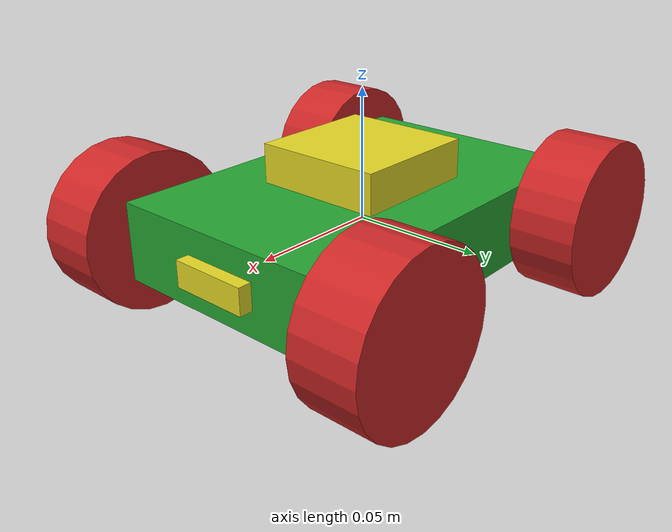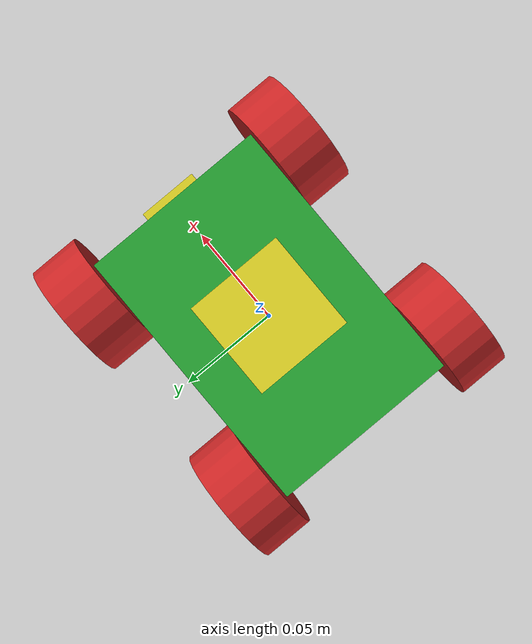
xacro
<?xml version="1.0" ?>
<robot name="steer_bot" xmlns:xacro="http://wiki.ros.org/xacro">

    <xacro:include filename="steer_bot.urdf.xacro" />
    <xacro:include filename="steer_bot.ros2_control.xacro" />
    <xacro:include filename="steer_bot_camera.xacro" />
    <xacro:include filename="steer_bot_lidar.xacro" />

</robot>

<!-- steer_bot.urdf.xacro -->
<robot name="steer_bot" xmlns:xacro="http://wiki.ros.org/xacro">
  <!-- Include xacro for inertials, materials and wheels -->
  <xacro:include filename="$(find steer_bot_description)/urdf/wheel.xacro"/>

  <xacro:property name="robot_namespace" value="/steer_bot"/>

  <!-- Math constants -->
  <xacro:property name="deg_to_rad" value="0.01745329251994329577"/>

  <!-- Robot base dimensions -->
  <xacro:property name="base_length" value="0.14" />
  <xacro:property name="base_width" value="0.095" />
  <xacro:property name="base_height" value="0.03" />
  <xacro:property name="base_mass" value="1" />

  <!-- Wheel link dimensions -->
  <xacro:property name="wheel_radius" value="0.03" />
  <xacro:property name="wheel_thickness" value="0.025" />
  <xacro:property name="wheel_mass" value="0.1" />

  <!-- Steering link dimensions -->
  <xacro:property name="steer_radius" value="0.03" />
  <xacro:property name="steer_thickness" value="0.03" />
  <xacro:property name="steer_mass" value="0.2" />

  <!-- Axle positions -->
  <xacro:property name="axle_offset" value="0.0125" />
  <xacro:property name="steer_offset" value="0.02" />

  <link name="base_footprint"/>

  <joint name="base_joint" type="fixed">
    <parent link="base_footprint"/>
    <child link="base_link"/>
    <origin xyz="0 0 0" rpy="0 0 0"/>
  </joint>

  <!-- Base link -->
  <link name="base_link">
    <visual>
      <origin xyz="0 0 0" rpy="0 0 0"/>
      <geometry>
        <box size="${base_length} ${base_width} ${base_height}"/>
      </geometry>
      <material name="green" />
    </visual>
    <collision>
      <origin xyz="0 0 0" rpy="0 0 0"/>
      <geometry>
        <box size="${base_length} ${base_width} ${base_height}"/>
      </geometry>
    </collision>
    <xacro:solid_cuboid_inertial
        rpy="0 0 0" xyz="0 0 0"
        mass="${base_mass}"
        x="${base_length}" y="${base_width}" z="${base_height}" />
  </link>

  <!-- Front steer and rear wheel joints required for ackermann_steering_controller -->
  <xacro:front_steer
    name="front"
    parent="base"
    steer_radius="${steer_radius}"
    steer_thickness="${steer_thickness}"
    steer_mass="${steer_mass}"
    base_length="${base_length}"
    base_width="${base_width}"
    axle_offset="${axle_offset}"
    steer_height="${wheel_radius+steer_offset}">
  </xacro:front_steer>

  <xacro:rear_wheel
    name="rear"
    parent="base"
    wheel_radius="${wheel_radius/4}"
    wheel_thickness="${wheel_thickness/2}"
    wheel_mass="${wheel_mass/32}">
    <origin xyz="${-base_length/2+axle_offset} 0 0" rpy="${-90 * deg_to_rad} 0 0"/>
  </xacro:rear_wheel>

  <!-- Steerable front wheels -->
  <xacro:front_wheel_lr
    name="front_right"
    parent="base"
    reflect="-1"
    wheel_radius="${wheel_radius}"
    wheel_thickness="${wheel_thickness}"
    wheel_mass="${wheel_mass}"
    steer_radius="${steer_radius}"
    steer_thickness="${steer_thickness}"
    steer_mass="${steer_mass}"
    base_length="${base_length}"
    base_width="${base_width}"
    axle_offset="${axle_offset}"
    steer_height="${wheel_radius+steer_offset}">
  </xacro:front_wheel_lr>
  <xacro:front_wheel_lr
    name="front_left"
    parent="base"
    reflect="1"
    wheel_radius="${wheel_radius}"
    wheel_thickness="${wheel_thickness}"
    wheel_mass="${wheel_mass}"
    steer_radius="${steer_radius}"
    steer_thickness="${steer_thickness}"
    steer_mass="${steer_mass}"
    base_length="${base_length}"
    base_width="${base_width}"
    axle_offset="${axle_offset}"
    steer_height="${wheel_radius+steer_offset}">
  </xacro:front_wheel_lr>

  <!-- Rear wheels -->
  <xacro:rear_wheel_lr
    name="rear_right"
    parent="base"
    wheel_radius="${wheel_radius}"
    wheel_thickness="${wheel_thickness}"
    wheel_mass="${wheel_mass}">
    <origin xyz="${-base_length/2+axle_offset} ${-base_width/2-axle_offset} 0" rpy="${-90 * deg_to_rad} 0 0"/>
  </xacro:rear_wheel_lr>
  <xacro:rear_wheel_lr
    name="rear_left"
    parent="base"
    wheel_radius="${wheel_radius}"
    wheel_thickness="${wheel_thickness}"
    wheel_mass="${wheel_mass}">
    <origin xyz="${-base_length/2+axle_offset} ${+base_width/2+axle_offset} 0" rpy="${-90 * deg_to_rad} 0 0"/>
  </xacro:rear_wheel_lr>

</robot>

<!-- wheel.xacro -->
<robot name="wheel" xmlns:xacro="http://wiki.ros.org/xacro">
  <!-- Include xacro for materials and inertials -->
  <xacro:include filename="$(find steer_bot_description)/urdf/materials.xacro"/>
  <xacro:include filename="$(find steer_bot_description)/urdf/inertials.xacro"/>

  <!-- Properties -->
  <xacro:property name="steer_effort" value="10.0"/>
  <xacro:property name="steer_velocity" value="5.0"/>
  <xacro:property name="steer_limit_deg" value="45.0"/>

  <!-- Bicycle model front steering link (required for steer_drive_controller) -->
  <xacro:macro name="front_steer"
    params="
      name
      parent
      steer_radius
      steer_thickness
      steer_mass
      base_length
      base_width
      axle_offset
      steer_height">
    <link name="${name}_steer_link">
      <collision>
        <origin xyz="0 0 0" rpy="0 0 0"/>
        <geometry>
          <cylinder radius="${steer_radius}" length="${steer_thickness}"/>
        </geometry>
      </collision>
      <xacro:solid_cylinder_inertial
          rpy="0 0 0" xyz="0 0 0"
          mass="${steer_mass}"
          radius="${steer_radius}" length="${steer_thickness}" />
    </link>

    <joint name="${name}_steer_joint" type="revolute">
      <parent link="${parent}_link"/>
      <child link="${name}_steer_link"/>
      <origin xyz="${base_length/2-axle_offset} 0 ${steer_height}" rpy="0 0 0"/>
      <axis xyz="0 0 1"/>
      <limit effort="${steer_effort}"
             lower="${-180.0 * deg_to_rad}" upper="${180.0 * deg_to_rad}"
             velocity="${steer_velocity}"/>
    </joint>

    <transmission name="${name}_steer_joint_trans">
      <type>transmission_interface/SimpleTransmission</type>
      <actuator name="${name}_steer_joint_motor">
        <mechanicalReduction>1</mechanicalReduction>
        <hardwareInterface>hardware_interface/PositionJointInterface</hardwareInterface>
      </actuator>
      <joint name="${name}_steer_joint">
        <hardwareInterface>hardware_interface/PositionJointInterface</hardwareInterface>
      </joint>
    </transmission>

    <gazebo reference="${name}_steer_link">
      <material>Gazebo/Yellow</material>
    </gazebo>
  </xacro:macro>

  <!-- Car steering model front (steerable) wheel links (left/right) -->
  <xacro:macro name="front_wheel_lr"
    params="
      name
      parent
      reflect
      wheel_radius
      wheel_thickness
      wheel_mass
      steer_radius
      steer_thickness
      steer_mass
      base_length
      base_width
      axle_offset
      steer_height">
    <link name="${name}_steer_link">
      <collision>
        <origin xyz="0 0 0" rpy="0 0 0"/>
        <geometry>
          <cylinder radius="${steer_radius}" length="${steer_thickness}"/>
        </geometry>
      </collision>
      <xacro:solid_cylinder_inertial
          rpy="0 0 0" xyz="0 0 0"
          mass="${steer_mass}"
          radius="${steer_radius}" length="${steer_thickness}" />
    </link>

    <joint name="${name}_steer_joint" type="revolute">
      <parent link="${parent}_link"/>
      <child link="${name}_steer_link"/>
      <origin xyz="${base_length/2-axle_offset} ${reflect*(base_width/2+axle_offset)} ${steer_height}" rpy="0 0 0"/>
      <axis xyz="0 0 1"/>
      <limit effort="${steer_effort}"
             lower="${steer_limit_deg * deg_to_rad * -1.0}" upper="${steer_limit_deg * deg_to_rad}"
             velocity="${steer_velocity}"/>
    </joint>

    <link name="${name}_wheel_link">
      <visual>
        <origin xyz="0 0 0" rpy="0 0 0"/>
        <geometry>
          <cylinder radius="${wheel_radius}" length="${wheel_thickness}"/>
        </geometry>
        <material name="red" />
      </visual>
      <collision>
        <origin xyz="0 0 0" rpy="0 0 0"/>
        <geometry>
          <cylinder radius="${wheel_radius}" length="${wheel_thickness}"/>
        </geometry>
      </collision>
      <xacro:solid_cylinder_inertial
          rpy="0 0 0" xyz="0 0 0"
          mass="${wheel_mass}"
          radius="${wheel_radius}" length="${wheel_thickness}" />
    </link>

    <joint name="${name}_wheel_joint" type="continuous">
      <parent link="${name}_steer_link"/>
      <child link="${name}_wheel_link"/>
      <origin xyz="0 0 ${-steer_height}" rpy="${-90 * deg_to_rad} 0 0"/>
      <axis xyz="0 0 1"/>
    </joint>

    <transmission name="${name}_steer_joint_trans">
      <type>transmission_interface/SimpleTransmission</type>
      <actuator name="${name}_steer_joint_motor">
        <mechanicalReduction>1</mechanicalReduction>
        <hardwareInterface>hardware_interface/PositionJointInterface</hardwareInterface>
      </actuator>
      <joint name="${name}_steer_joint">
        <hardwareInterface>hardware_interface/PositionJointInterface</hardwareInterface>
      </joint>
    </transmission>

    <transmission name="${name}_wheel_joint_trans">
      <type>transmission_interface/SimpleTransmission</type>
      <actuator name="${name}_wheel_joint_motor">
        <mechanicalReduction>1</mechanicalReduction>
        <hardwareInterface>hardware_interface/VelocityJointInterface</hardwareInterface>
      </actuator>
      <joint name="${name}_wheel_joint">
        <hardwareInterface>hardware_interface/VelocityJointInterface</hardwareInterface>
      </joint>
    </transmission>

    <gazebo reference="${name}_steer_link">
      <material>Gazebo/Blue</material>
    </gazebo>

    <gazebo reference="${name}_wheel_link">
      <material>Gazebo/Red</material>
    </gazebo>
  </xacro:macro>

  <!-- Bicycle model rear wheel link (required for steer_drive_controller) -->
  <xacro:macro name="rear_wheel"
    params="
      name
      parent
      wheel_radius
      wheel_thickness
      wheel_mass
      *origin">
    <link name="${name}_wheel_link">
      <visual>
        <origin xyz="0 0 0" rpy="0 0 0"/>
        <geometry>
          <cylinder radius="${wheel_radius}" length="${wheel_thickness}"/>
        </geometry>
        <material name="yellow" />
      </visual>
      <collision>
        <origin xyz="0 0 0" rpy="0 0 0"/>
        <geometry>
          <cylinder radius="${wheel_radius}" length="${wheel_thickness}"/>
        </geometry>
      </collision>
      <xacro:solid_cylinder_inertial
          rpy="0 0 0" xyz="0 0 0"
          mass="${wheel_mass}"
          radius="${wheel_radius}" length="${wheel_thickness}" />
    </link>

    <joint name="${name}_wheel_joint" type="continuous">
      <parent link="${parent}_link"/>
      <child link="${name}_wheel_link"/>
      <xacro:insert_block name="origin"/>
      <axis xyz="0 0 1"/>
    </joint>

    <transmission name="${name}_wheel_joint_trans">
      <type>transmission_interface/SimpleTransmission</type>
      <actuator name="${name}_wheel_joint_motor">
        <mechanicalReduction>1</mechanicalReduction>
        <hardwareInterface>hardware_interface/VelocityJointInterface</hardwareInterface>
      </actuator>
      <joint name="${name}_wheel_joint">
        <hardwareInterface>hardware_interface/VelocityJointInterface</hardwareInterface>
      </joint>
    </transmission>

    <gazebo reference="${name}_wheel_link">
      <material>Gazebo/Yellow</material>
    </gazebo>
  </xacro:macro>

  <!-- Bicycle model front wheel link (passive - no transmission) -->
  <xacro:macro name="front_wheel"
    params="
      name
      parent
      wheel_radius
      wheel_thickness
      wheel_mass
      *origin">
    <link name="${name}_wheel_link">
      <visual>
        <origin xyz="0 0 0" rpy="0 0 0"/>
        <geometry>
          <cylinder radius="${wheel_radius}" length="${wheel_thickness}"/>
        </geometry>
        <material name="yellow" />
      </visual>
      <collision>
        <origin xyz="0 0 0" rpy="0 0 0"/>
        <geometry>
          <cylinder radius="${wheel_radius}" length="${wheel_thickness}"/>
        </geometry>
      </collision>
      <xacro:solid_cylinder_inertial
          rpy="0 0 0" xyz="0 0 0"
          mass="${wheel_mass}"
          radius="${wheel_radius}" length="${wheel_thickness}" />
    </link>

    <joint name="${name}_wheel_joint" type="continuous">
      <parent link="${parent}_link"/>
      <child link="${name}_wheel_link"/>
      <xacro:insert_block name="origin"/>
      <axis xyz="0 0 1"/>
    </joint>

    <gazebo reference="${name}_wheel_link">
      <material>Gazebo/Yellow</material>
    </gazebo>

    <gazebo reference="${name}_wheel_joint">
      <provideFeedback>true</provideFeedback>
    </gazebo>
  </xacro:macro>

  <!-- Car steering model rear wheel links (left/right) -->
  <xacro:macro name="rear_wheel_lr"
    params="
      name
      parent
      wheel_radius
      wheel_thickness
      wheel_mass
      *origin">
    <link name="${name}_wheel_link">
      <visual>
        <origin xyz="0 0 0" rpy="0 0 0"/>
        <geometry>
          <cylinder radius="${wheel_radius}" length="${wheel_thickness}"/>
        </geometry>
        <material name="red" />
      </visual>
      <collision>
        <origin xyz="0 0 0" rpy="0 0 0"/>
        <geometry>
          <cylinder radius="${wheel_radius}" length="${wheel_thickness}"/>
        </geometry>
      </collision>
      <xacro:solid_cylinder_inertial
          rpy="0 0 0" xyz="0 0 0"
          mass="${wheel_mass}"
          radius="${wheel_radius}" length="${wheel_thickness}" />
    </link>

    <joint name="${name}_wheel_joint" type="continuous">
      <parent link="${parent}_link"/>
      <child link="${name}_wheel_link"/>
      <xacro:insert_block name="origin"/>
      <axis xyz="0 0 1"/>
    </joint>

    <transmission name="${name}_wheel_joint_trans">
      <type>transmission_interface/SimpleTransmission</type>
      <actuator name="${name}_wheel_joint_motor">
        <mechanicalReduction>1</mechanicalReduction>
        <hardwareInterface>hardware_interface/VelocityJointInterface</hardwareInterface>
      </actuator>
      <joint name="${name}_wheel_joint">
        <hardwareInterface>hardware_interface/VelocityJointInterface</hardwareInterface>
      </joint>
    </transmission>

    <gazebo reference="${name}_wheel_link">
      <material>Gazebo/Red</material>
    </gazebo>
  </xacro:macro>
</robot>

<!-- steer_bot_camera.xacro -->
<robot name="steer_bot" xmlns:xacro="http://wiki.ros.org/xacro">

    <!-- Camera link -->
    <link name="camera_link">
    <visual>
        <origin xyz="0 0 0" rpy="0 0 0"/>
        <geometry>
        <box size="0.01 0.03 0.01"/>
        <!-- length, width, height -->
        </geometry>
        <material name="yellow" />
    </visual>
    <collision>
        <origin xyz="0 0 0" rpy="0 0 0"/>
        <geometry>
        <box size="0.01 0.03 0.01"/>
        </geometry>
    </collision>
    <xacro:solid_cuboid_inertial
        rpy="0 0 0" xyz="0 0 0"
        mass="0.1"
        x="0.01" y="0.03" z="0.01" />
    </link>

    <joint name="camera_joint" type="fixed">
        <parent link="base_link"/>
        <child link="camera_link"/>
        <origin xyz="${(base_length/2)} 0 0" rpy="0 0 0"/>
    </joint>

    <joint name="camera_optical_joint" type="fixed">
        <parent link="camera_link"/>
        <child link="camera_link_optical"/>
        <origin xyz="0 0 0" rpy="${-pi/2} 0 ${-pi/2}"/>
    </joint>

    <link name = "camera_link_optical"></link>

    <gazebo reference="camera_link">
        <material>Gazebo/Black</material>

        <sensor name="camera" type="camera">
            <pose> 0 0 0 0 0 0 </pose>
            <visualize>true</visualize>
            <update_rate>10</update_rate>
            <camera>
                <camera_info_topic>camera/camera_info</camera_info_topic>
                <horizontal_fov>1.089</horizontal_fov>
                <image>
                    <format>R8G8B8</format>
                    <width>640</width>
                    <clip>
                        <near>0.05</near>
                        <far>8.0</far>
                    </clip>
                    <height>480</height>
                </image>
            </camera>
            <topic>/camera/image_raw</topic>
            <gz_frame_id>camera_link_optical</gz_frame_id>

        </sensor>
    </gazebo>

</robot>

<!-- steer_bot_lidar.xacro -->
<robot name="steer_bot" xmlns:xacro="http://wiki.ros.org/xacro">

    <!-- Camera link -->
    <link name="lidar_link">
    <visual>
        <origin xyz="0 0 0" rpy="0 0 0"/>
        <geometry>
        <box size="0.05 0.05 0.03"/>
        <!-- length, width, height -->
        </geometry>
        <material name="yellow" />
    </visual>
    <collision>
        <origin xyz="0 0 0" rpy="0 0 0"/>
        <geometry>
        <box size="0.05 0.05 0.03"/>
        </geometry>
    </collision>
    <xacro:solid_cuboid_inertial
        rpy="0 0 0" xyz="0 0 0"
        mass="0.1"
        x="0.05" y="0.05" z="0.03" />
    </link>

    <joint name="lidar_joint" type="fixed">
        <parent link="base_link"/>
        <child link="lidar_link"/>
        <origin xyz="0 0 ${(base_height/2)}" rpy="0 0 0"/>
    </joint>

    <gazebo reference="lidar_link">
        <material>Gazebo/Black</material>

        <sensor name="laser" type="gpu_lidar">
            <pose> 0 0 0 0 0 0 </pose>
            <visualize>false</visualize>
            <update_rate>10</update_rate>
            <lidar>
                <scan>
                    <horizontal>
                        <samples>360</samples>
                        <min_angle>-3.14</min_angle>
                        <max_angle>3.14</max_angle>
                    </horizontal>
                </scan>
                <range>
                    <min>0.3</min>
                    <max>12</max>
                </range>
            </lidar>

            <topic>scan</topic>

            <gz_frame_id>lidar_link</gz_frame_id>

        </sensor>
    </gazebo>

</robot>
